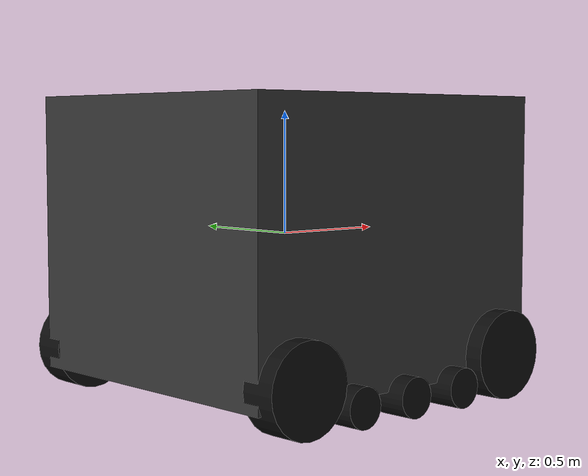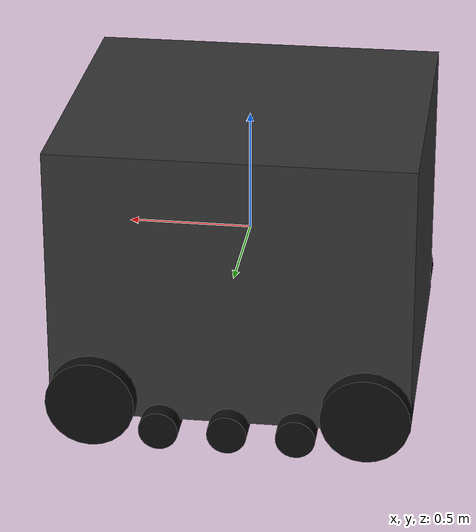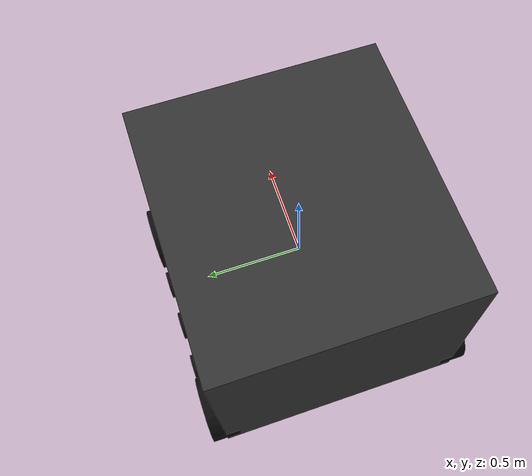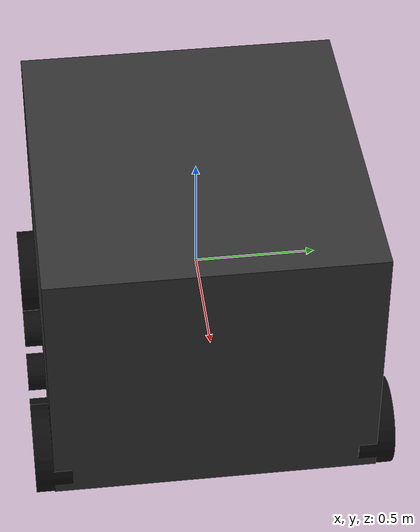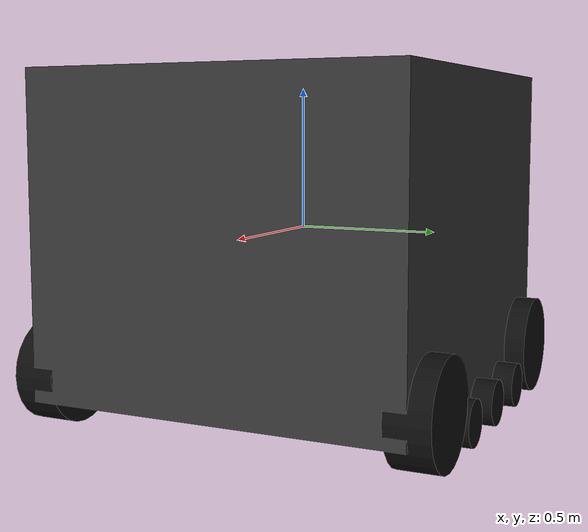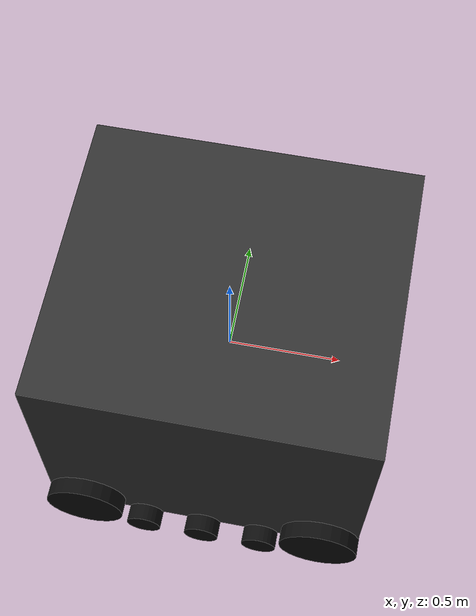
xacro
<?xml version="1.0"?>
<!-- 使用 Xacro -->
<robot name="tracked_bot" xmlns:xacro="http://www.ros.org/wiki/xacro">

  <!-- ======================= 通用参数 ====================== -->
  <!-- 车身 -->
  <xacro:property name="body_l" value="1.45"/>
  <xacro:property name="body_w" value="1.33"/>
  <xacro:property name="body_h" value="1.12"/>
  <xacro:property name="mass_body" value="8.0"/>
  <!-- 履带 -->
  <xacro:property name="track_w" value="0.15"/>      <!-- 履带宽度 -->
  <xacro:property name="sprocket_r" value="0.18"/>   <!-- 前后驱动/导向轮半径 -->
  <xacro:property name="road_wheel_r" value="0.08"/>  <!-- 中间负重轮半径 -->
  <xacro:property name="track_base_l" value="1.1"/>   <!-- 轮子中心距 (前后轮之间) -->
  <xacro:property name="num_road_wheels" value="3"/>  <!-- 中间负重轮数量 -->
  <xacro:property name="wheel_separation_y" value="${body_w / 2.0}"/> <!-- 履带中心到车中心的Y距离 -->
  <!-- 轮子中心 Z 坐标: 假设 base_link 原点在几何中心 -->
  <xacro:property name="wheels_z_offset" value="-${body_h/2 - road_wheel_r}"/>
  <xacro:property name="mass_sprocket" value="1.0"/>
  <xacro:property name="mass_road_wheel" value="0.5"/>

  <!-- ======================= 链接 ========================= -->
  <!-- 底盘本体 -->
  <link name="base_link">
    <inertial>
      <mass value="${mass_body}"/>
      <!-- Base link origin is at geometric center -->
      <origin xyz="0 0 0" rpy="0 0 0"/>
      <inertia ixx="${1/12*mass_body*(body_w*body_w + body_h*body_h)}"
               iyy="${1/12*mass_body*(body_l*body_l + body_h*body_h)}"
               izz="${1/12*mass_body*(body_l*body_l + body_w*body_w)}"
               ixy="0" ixz="0" iyz="0"/>
    </inertial>
    <visual>
       <origin xyz="0 0 0" rpy="0 0 0"/>
      <geometry><box size="${body_l} ${body_w} ${body_h}"/></geometry>
      <material name="grey"/>
    </visual>
    <collision>
       <origin xyz="0 0 0" rpy="0 0 0"/>
      <geometry><box size="${body_l} ${body_w} ${body_h}"/></geometry>
    </collision>
  </link>

  <!-- 履带构建宏 -->
  <xacro:macro name="track_side" params="prefix reflect_y">

    <!-- 前驱动/导向轮 -->
    <link name="${prefix}_sprocket_front">
      <visual>
        <origin xyz="0 0 0" rpy="${pi/2} 0 0"/>
        <geometry><cylinder radius="${sprocket_r}" length="${track_w}"/></geometry>
        <material name="black"/>
      </visual>
      <collision>
        <origin xyz="0 0 0" rpy="${pi/2} 0 0"/>
        <geometry><cylinder radius="${sprocket_r}" length="${track_w}"/></geometry>
      </collision>
      <inertial>
         <mass value="${mass_sprocket}"/>
         <origin xyz="0 0 0" rpy="${pi/2} 0 0"/> <!-- Cylinder inertia centered -->
         <inertia ixx="${(1/12)*mass_sprocket*(3*sprocket_r*sprocket_r + track_w*track_w)}"
                  iyy="${(1/12)*mass_sprocket*(3*sprocket_r*sprocket_r + track_w*track_w)}"
                  izz="${(1/2)*mass_sprocket*sprocket_r*sprocket_r}"
                  ixy="0" ixz="0" iyz="0"/>
      </inertial>
    </link>
    <joint name="${prefix}_sprocket_front_joint" type="fixed">
      <parent link="base_link"/>
      <child link="${prefix}_sprocket_front"/>
      <origin xyz="${track_base_l/2} ${reflect_y * wheel_separation_y} ${wheels_z_offset}" rpy="0 0 0"/>
    </joint>

    <!-- 后驱动/导向轮 -->
    <link name="${prefix}_sprocket_back">
      <visual>
        <origin xyz="0 0 0" rpy="${pi/2} 0 0"/>
        <geometry><cylinder radius="${sprocket_r}" length="${track_w}"/></geometry>
        <material name="black"/>
      </visual>
       <collision>
        <origin xyz="0 0 0" rpy="${pi/2} 0 0"/>
        <geometry><cylinder radius="${sprocket_r}" length="${track_w}"/></geometry>
      </collision>
      <inertial>
         <mass value="${mass_sprocket}"/>
         <origin xyz="0 0 0" rpy="${pi/2} 0 0"/>
         <inertia ixx="${(1/12)*mass_sprocket*(3*sprocket_r*sprocket_r + track_w*track_w)}"
                  iyy="${(1/12)*mass_sprocket*(3*sprocket_r*sprocket_r + track_w*track_w)}"
                  izz="${(1/2)*mass_sprocket*sprocket_r*sprocket_r}"
                  ixy="0" ixz="0" iyz="0"/>
      </inertial>
    </link>
    <joint name="${prefix}_sprocket_back_joint" type="fixed">
      <parent link="base_link"/>
      <child link="${prefix}_sprocket_back"/>
      <origin xyz="-${track_base_l/2} ${reflect_y * wheel_separation_y} ${wheels_z_offset}" rpy="0 0 0"/>
    </joint>

    <!-- 中间负重轮 -->
    <xacro:if value="${num_road_wheels > 0}">
      <xacro:property name="road_wheel_spacing" value="${track_base_l / (num_road_wheels + 1)}"/>
      <xacro:macro name="road_wheel" params="n">
        <link name="${prefix}_road_wheel_${n}">
          <visual>
            <origin xyz="0 0 0" rpy="${pi/2} 0 0"/>
            <geometry><cylinder radius="${road_wheel_r}" length="${track_w}"/></geometry>
            <material name="black"/>
          </visual>
           <collision>
            <origin xyz="0 0 0" rpy="${pi/2} 0 0"/>
            <geometry><cylinder radius="${road_wheel_r}" length="${track_w}"/></geometry>
          </collision>
          <inertial>
             <mass value="${mass_road_wheel}"/>
             <origin xyz="0 0 0" rpy="${pi/2} 0 0"/>
             <inertia ixx="${(1/12)*mass_road_wheel*(3*road_wheel_r*road_wheel_r + track_w*track_w)}"
                      iyy="${(1/12)*mass_road_wheel*(3*road_wheel_r*road_wheel_r + track_w*track_w)}"
                      izz="${(1/2)*mass_road_wheel*road_wheel_r*road_wheel_r}"
                      ixy="0" ixz="0" iyz="0"/>
          </inertial>
        </link>
        <joint name="${prefix}_road_wheel_${n}_joint" type="fixed">
          <parent link="base_link"/>
          <child link="${prefix}_road_wheel_${n}"/>
          <!-- Place road wheels lower than sprockets -->
          <origin xyz="${track_base_l/2 - n*road_wheel_spacing} ${reflect_y * wheel_separation_y} ${wheels_z_offset - (sprocket_r - road_wheel_r)}" rpy="0 0 0"/>
        </joint>
      </xacro:macro>
      <!-- Generate road wheels using loop (requires newer xacro) -->
      <!-- For older xacro, manually call like this -->
      <xacro:road_wheel n="1"/>
      <xacro:road_wheel n="2"/>
      <xacro:road_wheel n="3"/>
    </xacro:if>

  </xacro:macro>

  <!-- ================== 生成履带两侧 ================== -->
  <xacro:track_side prefix="left"  reflect_y="1"/>
  <xacro:track_side prefix="right" reflect_y="-1"/>

  <!-- 定义材料 -->
  <material name="black"><color rgba="0.05 0.05 0.05 1"/></material>
  <material name="grey"><color rgba="0.2 0.2 0.2 1"/></material>

  <!-- 虚拟驱动关节 (用于 ros2_control, 不影响物理树) -->
  <!-- These are needed if/when ros2_control block is uncommented -->

  <!-- ==================== ros2_control ==================== -->

  <!-- ====================== Gazebo ==================== -->
  <gazebo>
     <!-- (如果需要，以后添加 gazebo_ros2_control 插件) -->
  </gazebo>

  <!-- Gazebo 物理属性 -->
  <gazebo reference="left_sprocket_front">
    <mu1>1.0</mu1> <mu2>1.0</mu2> <material>Gazebo/DarkGrey</material>
  </gazebo>
   <gazebo reference="left_sprocket_back">
    <mu1>1.0</mu1> <mu2>1.0</mu2> <material>Gazebo/DarkGrey</material>
  </gazebo>
  <gazebo reference="right_sprocket_front">
    <mu1>1.0</mu1> <mu2>1.0</mu2> <material>Gazebo/DarkGrey</material>
  </gazebo>
   <gazebo reference="right_sprocket_back">
    <mu1>1.0</mu1> <mu2>1.0</mu2> <material>Gazebo/DarkGrey</material>
  </gazebo>
  <gazebo reference="left_road_wheel_1">
    <mu1>1.0</mu1> <mu2>1.0</mu2> <material>Gazebo/DarkGrey</material>
  </gazebo>
  <gazebo reference="left_road_wheel_2">
    <mu1>1.0</mu1> <mu2>1.0</mu2> <material>Gazebo/DarkGrey</material>
  </gazebo>
  <gazebo reference="left_road_wheel_3">
    <mu1>1.0</mu1> <mu2>1.0</mu2> <material>Gazebo/DarkGrey</material>
  </gazebo>
   <gazebo reference="right_road_wheel_1">
    <mu1>1.0</mu1> <mu2>1.0</mu2> <material>Gazebo/DarkGrey</material>
  </gazebo>
  <gazebo reference="right_road_wheel_2">
    <mu1>1.0</mu1> <mu2>1.0</mu2> <material>Gazebo/DarkGrey</material>
  </gazebo>
  <gazebo reference="right_road_wheel_3">
    <mu1>1.0</mu1> <mu2>1.0</mu2> <material>Gazebo/DarkGrey</material>
  </gazebo>
   <gazebo reference="base_link">
    <material>Gazebo/Grey</material>
  </gazebo>

</robot>
